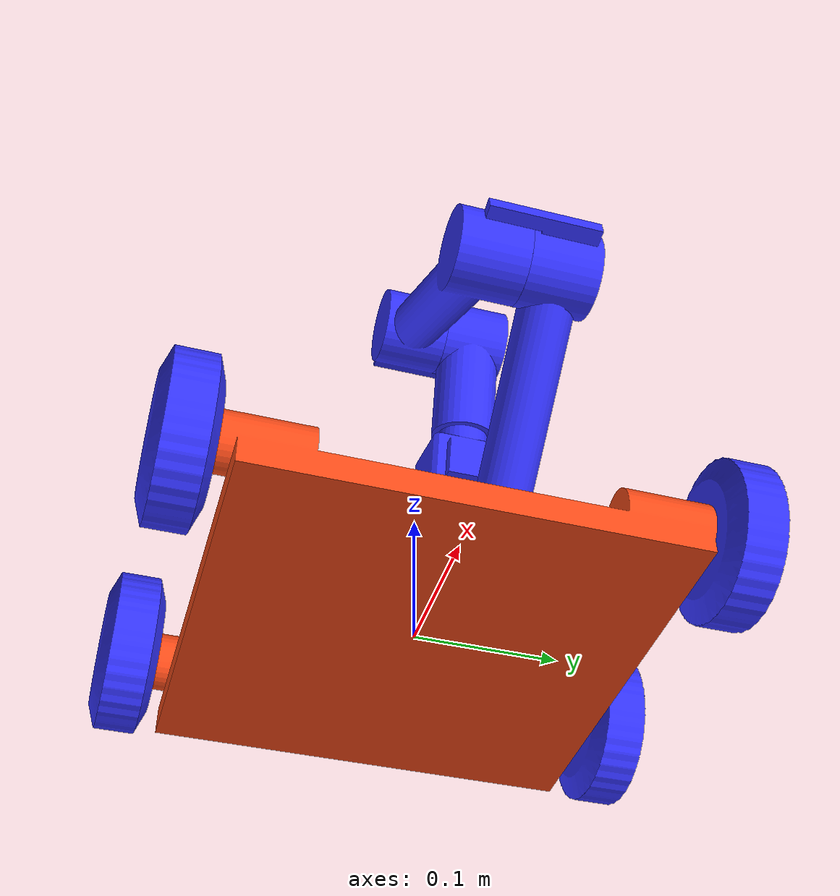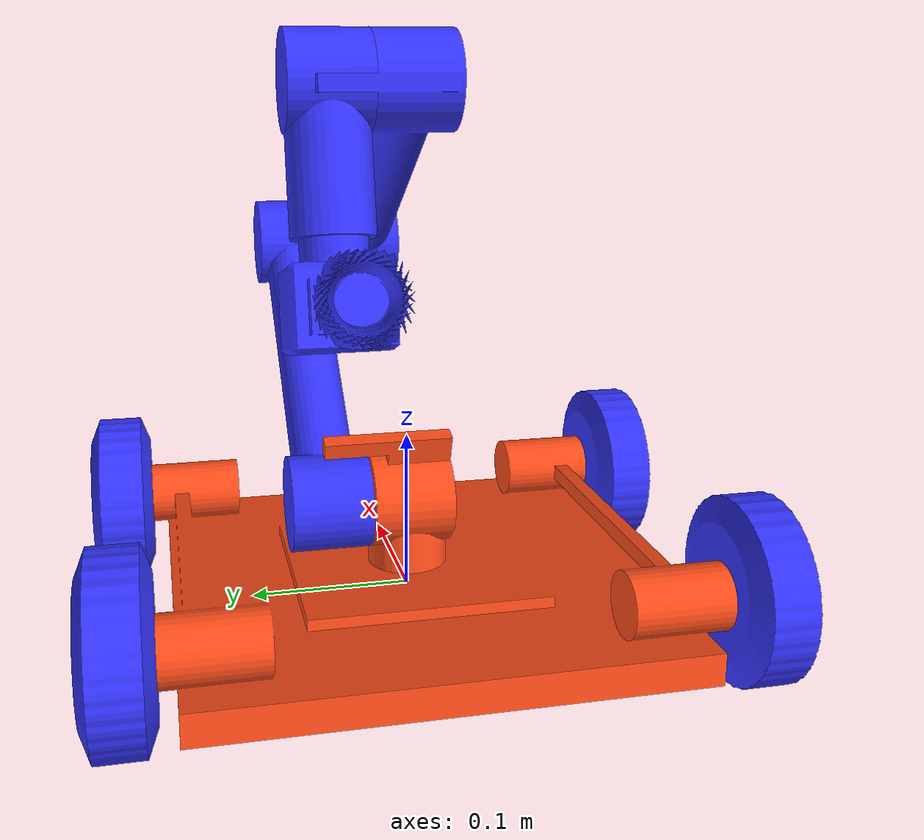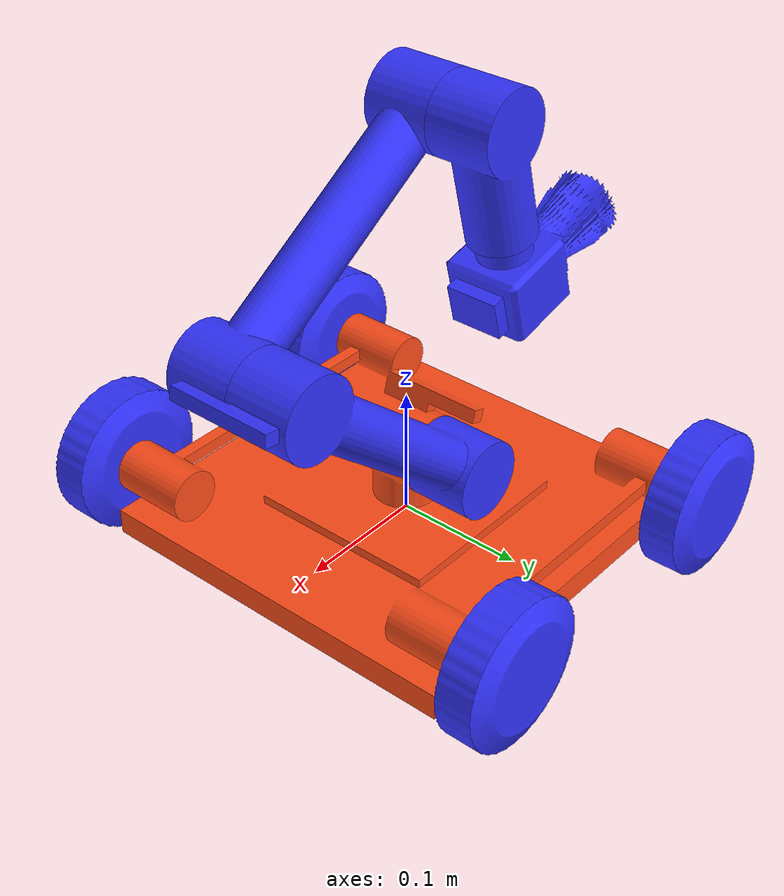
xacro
<?xml version="1.0"?>
<robot xmlns:xacro="http://www.ros.org/wiki/xacro"  name="robot">
   <xacro:include filename="robot_core.xacro" />
   <xacro:include filename="inertial_macros.xacro" />
   <xacro:include filename="gazebo_control.xacro" />
   <xacro:include filename="gripper_tr.xacro" />
   <!--xacro:drive_controller/-->

   <ros2_control name="gripper_robot_gazebo_system" type="system">
      <hardware>
         <plugin>gazebo_ros2_control/GazeboSystem</plugin>
      </hardware>
      <xacro:gripper1_tr/>
      <xacro:gripper2_tr/>
      <xacro:gripper3_tr/>
      <xacro:gripper4_tr/>
      <xacro:leftbackwheel_tr/>
      <xacro:rightbackwheel_tr/>
   </ros2_control>
   <xacro:robot_controller/>
</robot>

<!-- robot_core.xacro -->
<robot xmlns:xacro="http://www.ros.org/wiki/xacro" >
<xacro:include filename="inertial_macros.xacro" />

    <material name="white">
        <color rgba="1 1 1 1" />
    </material>

    <material name="orange">
        <color rgba="1 0.3 0.1 1"/>
    </material>

    <material name="blue">
        <color rgba="0.2 0.2 1 1"/>
    </material>

    <material name="black">
        <color rgba="0 0 0 1"/>
    </material>

    <material name="red">
        <color rgba="1 0 0 1"/>
    </material>

    <!-- BASE LINK  -->

    <link name="base_link">
    </link>

    <joint name="chassis_joint" type="fixed">
            <parent link="base_link"/>
            <child link="chassis"/>
            <origin xyz="0 0 0"/>
    </joint>

    <!-- CHASSIS OF ROBOT -->

    <link name="chassis">
        <visual>
            <origin xyz="0 0 0" rpy="0 0 0"/>
            <geometry>
                <mesh filename="file:///home/tony/drive_robot_ws/src/articubot_one/description/body/body_cammy.dae"/>
            </geometry>
            <material name="orange"/>
        </visual>
        <collision>
            <origin xyz="0 0 0.01" rpy="0 0 0"/>
            <geometry>
                <box size="0.3 0.3 0.05"/>
            </geometry>
        </collision>

        <xacro:inertial_box mass="90" x="0.3" y="0.3" z="0.04">
            <origin xyz="0 0 0.03" rpy="0 0 0"/>
        </xacro:inertial_box>
    </link>
    <gazebo reference="chassis">
        <material>Gazebo/Orange</material>
        <mu1 value="0.3"/>
        <mu2 value="0.3"/>
    </gazebo>

    <!-- BASE_FOOTPRINT LINK  -->

    <joint name="base_footprint_joint" type="fixed">
        <parent link="chassis"/>
        <child link="base_footprint"/>
        <origin xyz="0 0 0" rpy="0 0 0"/>
    </joint>

    <link name="base_footprint">
    </link>

    <!-- LEFT FRONT WHEEL -->

    <joint name="leftfront_wheel_joint" type="continuous">
        <parent link="chassis"/>
        <child link="leftfront_wheel"/>
        <origin xyz="0.115 0.18 0.03" rpy="0 0 0"/>
        <axis xyz="0 -1 0"/>
        <dynamics damping="1" friction="1"/>
    </joint>
    <link name="leftfront_wheel">
        <visual>
            <origin xyz="0 0 0" rpy="0 0 0"/>
            <geometry>
                <mesh filename="file:///home/tony/drive_robot_ws/src/articubot_one/description/wheel/wheel.dae"/>
            </geometry>
            <material name="blue"/>
        </visual>
        <collision>
            <origin xyz="0 0 0" rpy="${pi/2} 0 0"/>
            <geometry>
                <cylinder length="0.05" radius="0.055" />
            </geometry>
        </collision>
        <xacro:inertial_cylinder mass="10" length="0.04" radius="0.04">
            <origin xyz="0 0 0" rpy="${pi/2} 0 0"/>
        </xacro:inertial_cylinder>
    </link>
    <gazebo reference="leftfront_wheel">
        <material>Gazebo/White</material>
        <mu1 value="0.6"/>
        <mu2 value="0.6"/>
    </gazebo>

    <!-- LEFT BACK WHEEL -->

    <joint name="leftback_wheel_joint" type="continuous">
        <parent link="chassis"/>
        <child link="leftback_wheel"/>
        <origin xyz="-0.115 0.18 0.03" rpy="0 0 0"/>
        <axis xyz="0 -1 0"/>
        <dynamics damping="1" friction="1"/>
    </joint>
    <link name="leftback_wheel">
        <visual>
            <origin xyz="0 0 0" rpy="0 0 0"/>
            <geometry>
                <mesh filename="file:///home/tony/drive_robot_ws/src/articubot_one/description/wheel/wheel.dae"/>
            </geometry>
            <material name="blue"/>
        </visual>
        <collision>
            <origin xyz="0 0 0" rpy="${pi/2} 0 0"/>
            <geometry>
                <cylinder length="0.05" radius="0.055" />
            </geometry>
        </collision>
        <xacro:inertial_cylinder mass="10" length="0.04" radius="0.04">
            <origin xyz="0 0 0" rpy="${pi/2} 0 0"/>
        </xacro:inertial_cylinder>
    </link>
    <gazebo reference="leftback_wheel">
        <material>Gazebo/White</material>
        <mu1 value="0.6"/>
        <mu2 value="0.6"/>
    </gazebo>

    <!-- RIGHT FRONT WHEEL -->

    <joint name="rightfront_wheel_joint" type="continuous">
        <parent link="chassis"/>
        <child link="rightfront_wheel"/>
        <origin xyz="0.115 -0.18 0.03" rpy="0 0 0"/>
        <axis xyz="0 -1 0"/>
        <dynamics damping="1" friction="1"/>
    </joint>
    <link name="rightfront_wheel">
        <visual>
            <origin xyz="0 0 0" rpy="0 0 0"/>
            <geometry>
                <mesh filename="file:///home/tony/drive_robot_ws/src/articubot_one/description/wheel/wheel.dae"/>
            </geometry>
            <material name="blue"/>
        </visual>
        <collision>
            <origin xyz="0 0 0" rpy="${pi/2} 0 0"/>
            <geometry>
                <cylinder length="0.05" radius="0.055" />
            </geometry>
        </collision>
        <xacro:inertial_cylinder mass="10" length="0.04" radius="0.04">
            <origin xyz="0 0 0" rpy="${pi/2} 0 0"/>
        </xacro:inertial_cylinder>
    </link>
    <gazebo reference="rightfront_wheel">
        <material>Gazebo/White</material>
        <mu1 value="0.6"/>
        <mu2 value="0.6"/>
    </gazebo>

    <!-- RIGHT BACK WHEEL -->

    <joint name="rightback_wheel_joint" type="continuous">
        <parent link="chassis"/>
        <child link="rightback_wheel"/>
        <origin xyz="-0.115 -0.18 0.03" rpy="0 0 0"/>
        <axis xyz="0 -1 0"/>
        <dynamics damping="1" friction="1"/>
    </joint>
    <link name="rightback_wheel">
        <visual>
            <origin xyz="0 0 0" rpy="0 0 0"/>
            <geometry>
                <mesh filename="file:///home/tony/drive_robot_ws/src/articubot_one/description/wheel/wheel.dae"/>
            </geometry>
            <material name="blue"/>
        </visual>
        <collision>
            <origin xyz="0 0 0" rpy="${pi/2} 0 0"/>
            <geometry>
                <cylinder length="0.05" radius="0.055" />
            </geometry>
        </collision>
        <xacro:inertial_cylinder mass="10" length="0.04" radius="0.04">
            <origin xyz="0 0 0" rpy="${pi/2} 0 0"/>
        </xacro:inertial_cylinder>
    </link>
    <gazebo reference="rightback_wheel">
        <material>Gazebo/White</material>
        <mu1 value="0.6"/>
        <mu2 value="0.6"/>
    </gazebo>

    <!-- BASE ARM -->

    <joint name="base_arm_joint" type="revolute">
        <axis xyz="0 1 0"/>
        <limit effort="1000.0" lower="0.5" upper="1.25" velocity="0.5"/>
        <origin rpy="0 0 0" xyz="0 0.051 0.06"/>
        <parent link="chassis"/>
        <child link="base_arm"/>
        <dynamics damping="2" friction="5"/>
    </joint>
    <link name="base_arm">
        <visual>
            <origin xyz="0 0 0" rpy="0 0 0"/>
            <geometry>
                <mesh filename="file:///home/tony/drive_robot_ws/src/articubot_one/description/arm2/arm_2.dae"/>
            </geometry>
            <material name="blue"/>
        </visual>
        <collision>
            <origin xyz="0 0 0.12" rpy="0 0 0"/>
            <geometry>
                <cylinder length="0.25" radius="0.025" />
            </geometry>
        </collision>
        <xacro:inertial_cylinder mass="1" length="0.25" radius="0.025">
            <origin xyz="0 0 0.12" rpy="0 0 0"/>
        </xacro:inertial_cylinder>
    </link>
    <gazebo reference="base_arm">
        <material>Gazebo/White</material>
        <mu1 value="0.6"/>
        <mu2 value="0.6"/>
    </gazebo>

    <!-- MIDDLE ARM -->

    <joint name="mid_arm_joint" type="revolute">
        <axis xyz="0 1 0"/>
        <limit effort="1000.0" lower="-1.5" upper="-2.25" velocity="0.5"/>
        <origin rpy="0 0 0" xyz="0 -0.05 0.22"/>
        <parent link="base_arm"/>
        <child link="mid_arm"/>
        <dynamics damping="2" friction="5"/>
    </joint>
    <link name="mid_arm">
        <visual>
            <origin xyz="0 0 0" rpy="0 0 0"/>
            <geometry>
                <mesh filename="file:///home/tony/drive_robot_ws/src/articubot_one/description/arm_base/arm_base.dae"/>
            </geometry>
            <material name="blue"/>
        </visual>
        <collision>
            <origin xyz="0 0 0.12" rpy="0 0 0"/>
            <geometry>
                <cylinder length="0.25" radius="0.025" />
            </geometry>
        </collision>
        <xacro:inertial_cylinder mass="1" length="0.25" radius="0.025">
            <origin xyz="0 0 0.12" rpy="0 0 0"/>
        </xacro:inertial_cylinder>
    </link>
    <gazebo reference="mid_arm">
        <material>Gazebo/White</material>
        <mu1 value="0.6"/>
        <mu2 value="0.6"/>
    </gazebo>

    <!-- CAM ARM -->

    <joint name="cam_arm_joint" type="revolute">
        <axis xyz="0 1 0"/>
        <limit effort="1000.0" lower="2" upper="0.5" velocity="0.5"/>
        <origin rpy="0 0 0" xyz="0 0.05 0.22"/>
        <parent link="mid_arm"/>
        <child link="cam_arm"/>
        <dynamics damping="1" friction="1"/>
    </joint>
    <link name="cam_arm">
        <visual>
            <origin xyz="0 0 0" rpy="0 0 0"/>
            <geometry>
                <mesh filename="file:///home/tony/drive_robot_ws/src/articubot_one/description/arm_cam/arm_cam.dae"/>
            </geometry>
            <material name="blue"/>
        </visual>
        <collision>
            <origin xyz="0 0 -0.03" rpy="0 0 0"/>
            <geometry>
                <cylinder length="0.12" radius="0.025" />
            </geometry>
        </collision>
        <xacro:inertial_cylinder mass="1" length="0.12" radius="0.025">
            <origin xyz="0 0 -0.03" rpy="0 0 0"/>
        </xacro:inertial_cylinder>
    </link>
    <gazebo reference="cam_arm">
        <material>Gazebo/White</material>
        <mu1 value="0.2"/>
        <mu2 value="0.2"/>
    </gazebo>

    <!-- CAM -->

    <joint name="cam_joint" type="revolute">
        <axis xyz="0 0 1"/>
        <limit effort="1000.0" lower="-1.5" upper="1.5" velocity="0.5"/>
        <origin rpy="0 0 ${pi*3/2}" xyz="0 0 -0.13"/>
        <parent link="cam_arm"/>
        <child link="cam"/>
        <dynamics damping="1" friction="1"/>
    </joint>
    <link name="cam">
        <visual>
            <origin xyz="0 0 0" rpy="0 0 0"/>
            <geometry>
                <mesh filename="file:///home/tony/drive_robot_ws/src/articubot_one/description/cam/cam.dae"/>
            </geometry>
            <material name="blue"/>
        </visual>
        <collision>
            <origin xyz="0 -0.03 0" rpy="0 0 ${pi*3/2}"/>
            <geometry>
                <box size="0.15 0.055 0.055"/>
            </geometry>
        </collision>
        <xacro:inertial_box mass="1" x="0.055" y="0.055" z="0.055">
            <origin xyz="0 -0.03 0" rpy="0 0 ${pi*3/2}"/>
        </xacro:inertial_box>
    </link>
    <gazebo reference="cam">
        <material>Gazebo/Black</material>
        <mu1 value="0.1"/>
        <mu2 value="0.1"/>
    </gazebo>

</robot>
